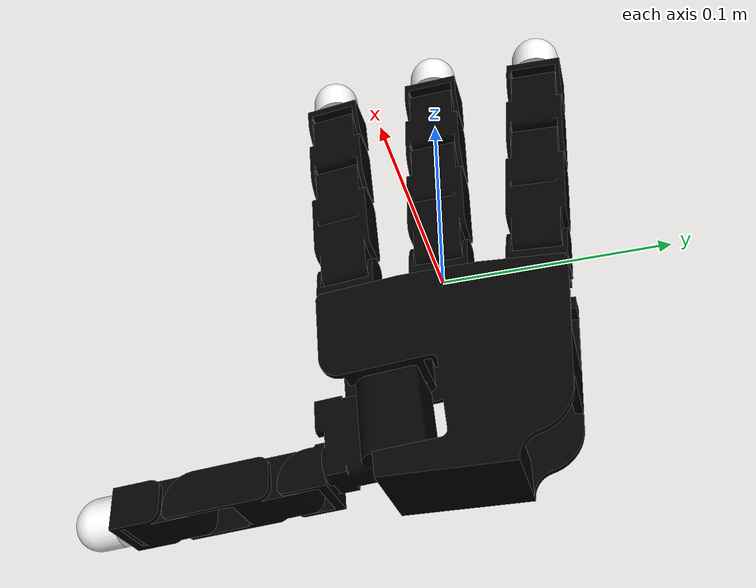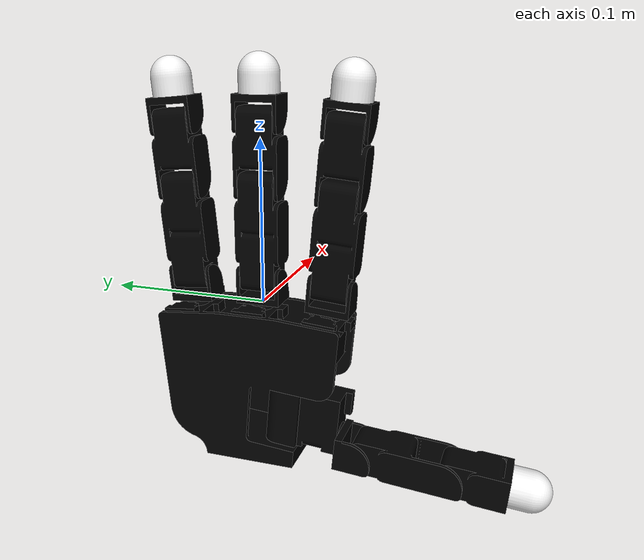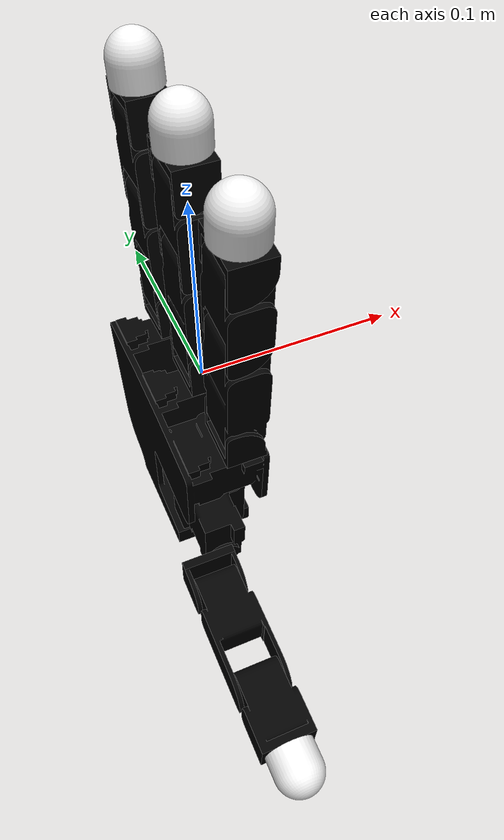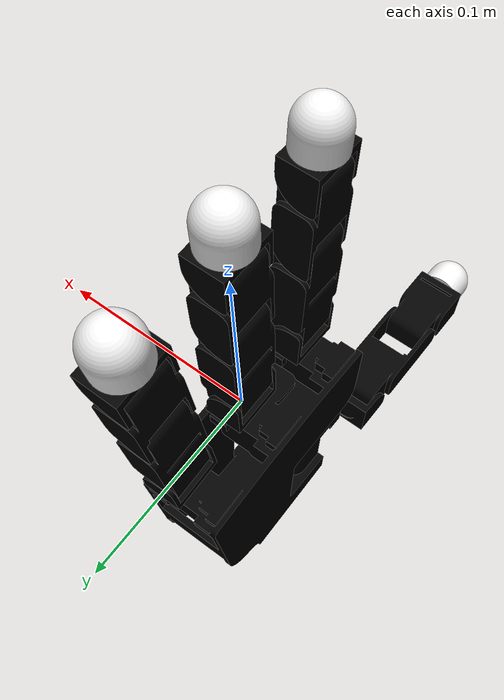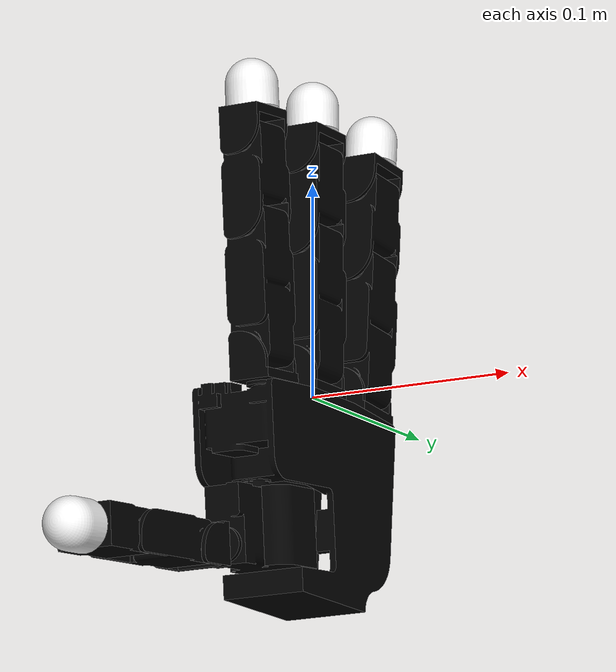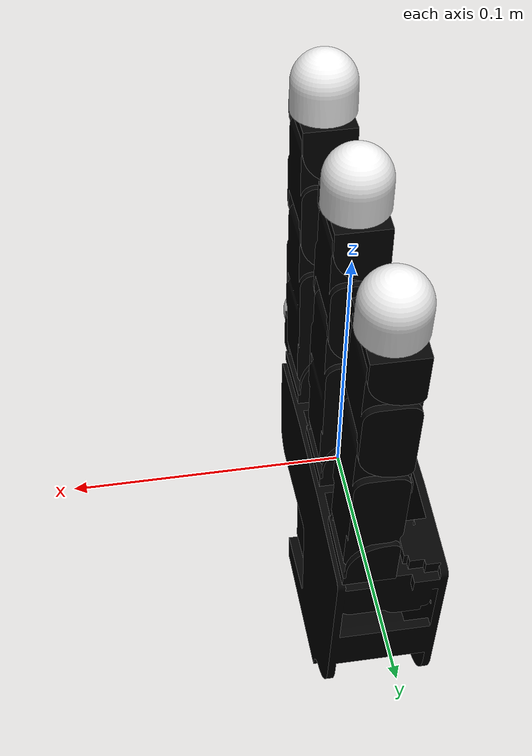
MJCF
<mujoco model="allegro_left">
  <compiler angle="radian" autolimits="true" />
  <option gravity="0 0 0" timestep="0.001" />
  <visual>
    <global offwidth="3840" offheight="2160" />
  </visual>
  <asset>
    <mesh name="base_link_left" content_type="model/obj" file="meshes/visual/base_link_left.obj" />
    <mesh name="link_0.0" content_type="model/obj" file="meshes/visual/link_0.0.obj" />
    <mesh name="link_1.0" content_type="model/obj" file="meshes/visual/link_1.0.obj" />
    <mesh name="link_2.0" content_type="model/obj" file="meshes/visual/link_2.0.obj" />
    <mesh name="link_3.0" content_type="model/obj" file="meshes/visual/link_3.0.obj" />
    <mesh name="link_tip" content_type="model/obj" file="meshes/visual/link_tip.obj" />
    <mesh name="link_tip_collision000" content_type="model/obj" file="meshes/collision/link_tip_collision000.obj" />
    <mesh name="link_12.0_left" content_type="model/obj" file="meshes/visual/link_12.0_left.obj" />
    <mesh name="link_13.0" content_type="model/obj" file="meshes/visual/link_13.0.obj" />
    <mesh name="link_14.0" content_type="model/obj" file="meshes/visual/link_14.0.obj" />
    <mesh name="link_15.0" content_type="model/obj" file="meshes/visual/link_15.0.obj" />
    <material name="base_link_left_material" rgba="0.00392157 0.00392157 0.00392157 1" />
    <material name="link_0.0_material" rgba="0.00392157 0.00392157 0.00392157 1" />
    <material name="link_1.0_material" rgba="0.00392157 0.00392157 0.00392157 1" />
    <material name="link_2.0_material" rgba="0.00392157 0.00392157 0.00392157 1" />
    <material name="link_3.0_material" rgba="0.00392157 0.00392157 0.00392157 1" />
    <material name="link_tip_material" rgba="0.94901961 0.94901961 0.94901961 1" />
    <material name="link_12.0_left_material" rgba="0.00392157 0.00392157 0.00392157 1" />
    <material name="link_13.0_material" rgba="0.00392157 0.00392157 0.00392157 1" />
    <material name="link_14.0_material" rgba="0.00392157 0.00392157 0.00392157 1" />
    <material name="link_15.0_material" rgba="0.00392157 0.00392157 0.00392157 1" />
    <texture type="skybox" builtin="gradient" rgb1="1 1 1" rgb2="1 1 1" width="32" height="512" />
  </asset>
  <worldbody>
    <light pos="0 0 5" dir="0 0 -1" directional="true" />
    <body name="hand_root">
      <body name="base_link">
        <inertial pos="0 0 0" mass="0.4154" diaginertia="0.0001 0.0001 0.0001" />
        <geom name="base_link_base_link_left_visual" quat="0.707107 -0.707106 0 0" type="mesh" contype="0" conaffinity="0" group="1" density="0" mesh="base_link_left" material="base_link_left_material" />
        <geom size="0.0207 0.056 0.0224" pos="-0.009 0 -0.023" type="box" group="3" />
        <geom size="0.0207 0.0269 0.0214" pos="-0.009 0.0253 -0.0667" type="box" group="3" />
        <geom size="0.0207 0.036 0.0065" pos="-0.0093 0.00557 -0.08874" type="box" group="3" />
        <body name="palm" pos="0 0 -0.065">
          <body name="wrist" pos="0 0 -0.03" />
        </body>
        <body name="link_0.0" pos="0 0.0435 -0.001542" quat="0.999048 -0.0436194 0 0">
          <inertial pos="0 0 0" quat="0.707107 0.707107 0 0" mass="0.0119" diaginertia="1.01667e-06 1.01667e-06 6.47677e-07" />
          <joint name="joint_0.0" pos="0 0 0" axis="0 0 1" range="-0.47 0.47" actuatorfrcrange="-10 10" damping="0.1" armature="0.0002" frictionloss="0.0" />
          <geom name="link_0.0_link_0.0_visual" type="mesh" contype="0" conaffinity="0" group="1" density="0" mesh="link_0.0" material="link_0.0_material" />
          <geom size="0.0098 0.01375 0.0082" pos="0 0 0.0082" type="box" group="3" />
          <body name="link_1.0" pos="0 0 0.0164">
            <inertial pos="0 0 0" quat="0.702596 0.559386 -0.178354 0.402039" mass="0.065" diaginertia="6.12799e-05 6.12799e-05 6.12799e-05" />
            <joint name="joint_1.0" pos="0 0 0" axis="0 1 0" range="-0.196 1.61" actuatorfrcrange="-10 10" damping="0.1" armature="0.0002" frictionloss="0.0" />
            <geom name="link_1.0_link_1.0_visual" type="mesh" contype="0" conaffinity="0" group="1" density="0" mesh="link_1.0" material="link_1.0_material" />
            <geom size="0.0098 0.01375 0.027" pos="0 0 0.027" type="box" group="3" />
            <body name="link_2.0" pos="0 0 0.054">
              <inertial pos="0 0 0" quat="0.719796 0.528175 -0.157463 0.422055" mass="0.0355" diaginertia="2.20969e-05 2.20969e-05 2.20969e-05" />
              <joint name="joint_2.0" pos="0 0 0" axis="0 1 0" range="-0.174 1.709" actuatorfrcrange="-10 10" damping="0.1" armature="0.0002" frictionloss="0.0" />
              <geom name="link_2.0_link_2.0_visual" type="mesh" contype="0" conaffinity="0" group="1" density="0" mesh="link_2.0" material="link_2.0_material" />
              <geom size="0.0098 0.01375 0.0192" pos="0 0 0.0192" type="box" group="3" />
              <body name="link_3.0" pos="0 0 0.0384">
                <inertial pos="0 0 0.01335" quat="0.5 0.5 0.5 0.5" mass="0.02" diaginertia="2e-05 2e-05 1e-05" />
                <joint name="joint_3.0" pos="0 0 0" axis="0 1 0" range="-0.227 1.618" actuatorfrcrange="-10 10" damping="0.1" armature="0.0002" frictionloss="0.0" />
                <geom name="link_3.0_link_3.0_visual" type="mesh" contype="0" conaffinity="0" group="1" density="0" mesh="link_3.0" material="link_3.0_material" />
                <geom size="0.0098 0.01345 0.011" pos="0 0 0.0047" type="box" group="3" />
                <body name="link_3.0_tip" pos="0 0 0.0387">
                  <inertial pos="0 0 0" mass="0.0168" diaginertia="9.68e-07 9.68e-07 9.68e-07" />
                  <geom name="link_3.0_tip_link_tip_visual" pos="0 0 -0.012" type="mesh" contype="0" conaffinity="0" group="1" density="0" mesh="link_tip" material="link_tip_material" />
                  <geom pos="0 0 -0.012" type="mesh" mesh="link_tip_collision000" group="3" />
                </body>
              </body>
            </body>
          </body>
        </body>
        <body name="link_4.0" pos="0 0 0.0007">
          <inertial pos="0 0 0" quat="0.5 0.5 -0.5 0.5" mass="0.005" diaginertia="6.125e-05 5.1458e-05 5.1458e-05" />
          <joint name="joint_4.0" pos="0 0 0" axis="0 0 1" range="-0.47 0.47" actuatorfrcrange="-10 10" damping="0.1" armature="0.0002" frictionloss="0.0" />
          <geom name="link_4.0_link_0.0_visual" type="mesh" contype="0" conaffinity="0" group="1" density="0" mesh="link_0.0" material="link_0.0_material" />
          <geom size="0.0098 0.01375 0.0082" pos="0 0 0.0082" type="box" group="3" />
          <body name="link_5.0" pos="0 0 0.0164">
            <inertial pos="0 0 0" quat="0.702596 0.559386 -0.178354 0.402039" mass="0.065" diaginertia="6.12799e-05 6.12799e-05 6.12799e-05" />
            <joint name="joint_5.0" pos="0 0 0" axis="0 1 0" range="-0.196 1.61" actuatorfrcrange="-10 10" damping="0.1" armature="0.0002" frictionloss="0.0" />
            <geom name="link_5.0_link_1.0_visual" type="mesh" contype="0" conaffinity="0" group="1" density="0" mesh="link_1.0" material="link_1.0_material" />
            <geom size="0.0098 0.01375 0.027" pos="0 0 0.027" type="box" group="3" />
            <body name="link_6.0" pos="0 0 0.054">
              <inertial pos="0 0 0" quat="0.719796 0.528175 -0.157463 0.422055" mass="0.0355" diaginertia="2.20969e-05 2.20969e-05 2.20969e-05" />
              <joint name="joint_6.0" pos="0 0 0" axis="0 1 0" range="-0.174 1.709" actuatorfrcrange="-10 10" damping="0.1" armature="0.0002" frictionloss="0.0" />
              <geom name="link_6.0_link_2.0_visual" type="mesh" contype="0" conaffinity="0" group="1" density="0" mesh="link_2.0" material="link_2.0_material" />
              <geom size="0.0098 0.01375 0.0192" pos="0 0 0.0192" type="box" group="3" />
              <body name="link_7.0" pos="0 0 0.0384">
                <inertial pos="0 0 0" quat="0.714142 0.538398 -0.162448 0.416821" mass="0.0388" diaginertia="2.68646e-05 2.68646e-05 2.68646e-05" />
                <joint name="joint_7.0" pos="0 0 0" axis="0 1 0" range="-0.227 1.618" actuatorfrcrange="-10 10" damping="0.1" armature="0.0002" frictionloss="0.0" />
                <geom name="link_7.0_link_3.0_visual" type="mesh" contype="0" conaffinity="0" group="1" density="0" mesh="link_3.0" material="link_3.0_material" />
                <geom size="0.0098 0.01345 0.011" pos="0 0 0.0047" type="box" group="3" />
                <body name="link_7.0_tip" pos="0 0 0.0387">
                  <inertial pos="0 0 0" quat="0.760448 0.456478 -0.161222 0.432844" mass="0.0096" diaginertia="4.3506e-06 4.3506e-06 4.3506e-06" />
                  <geom name="link_7.0_tip_link_tip_visual" pos="0 0 -0.012" type="mesh" contype="0" conaffinity="0" group="1" density="0" mesh="link_tip" material="link_tip_material" />
                  <geom pos="0 0 -0.012" type="mesh" mesh="link_tip_collision000" group="3" />
                </body>
              </body>
            </body>
          </body>
        </body>
        <body name="link_8.0" pos="0 -0.0435 -0.001542" quat="0.999048 0.0436194 0 0">
          <inertial pos="0 0 0" quat="0.5 0.5 -0.5 0.5" mass="0.005" diaginertia="6.125e-05 5.1458e-05 5.1458e-05" />
          <joint name="joint_8.0" pos="0 0 0" axis="0 0 1" range="-0.47 0.47" actuatorfrcrange="-10 10" damping="0.1" armature="0.0002" frictionloss="0.0" />
          <geom name="link_8.0_link_0.0_visual" type="mesh" contype="0" conaffinity="0" group="1" density="0" mesh="link_0.0" material="link_0.0_material" />
          <geom size="0.0098 0.01375 0.0082" pos="0 0 0.0082" type="box" group="3" />
          <body name="link_9.0" pos="0 0 0.0164">
            <inertial pos="0 0 0" quat="0.702596 0.559386 -0.178354 0.402039" mass="0.065" diaginertia="6.12799e-05 6.12799e-05 6.12799e-05" />
            <joint name="joint_9.0" pos="0 0 0" axis="0 1 0" range="-0.196 1.61" actuatorfrcrange="-10 10" damping="0.1" armature="0.0002" frictionloss="0.0" />
            <geom name="link_9.0_link_1.0_visual" type="mesh" contype="0" conaffinity="0" group="1" density="0" mesh="link_1.0" material="link_1.0_material" />
            <geom size="0.0098 0.01375 0.027" pos="0 0 0.027" type="box" group="3" />
            <body name="link_10.0" pos="0 0 0.054">
              <inertial pos="0 0 0" quat="0.719796 0.528175 -0.157463 0.422055" mass="0.0355" diaginertia="2.20969e-05 2.20969e-05 2.20969e-05" />
              <joint name="joint_10.0" pos="0 0 0" axis="0 1 0" range="-0.174 1.709" actuatorfrcrange="-10 10" damping="0.1" armature="0.0002" frictionloss="0.0" />
              <geom name="link_10.0_link_2.0_visual" type="mesh" contype="0" conaffinity="0" group="1" density="0" mesh="link_2.0" material="link_2.0_material" />
              <geom size="0.0098 0.01375 0.0192" pos="0 0 0.0192" type="box" group="3" />
              <body name="link_11.0" pos="0 0 0.0384">
                <inertial pos="0 0 0" quat="0.760448 0.456478 -0.161222 0.432844" mass="0.0096" diaginertia="4.3506e-06 4.3506e-06 4.3506e-06" />
                <joint name="joint_11.0" pos="0 0 0" axis="0 1 0" range="-0.227 1.618" actuatorfrcrange="-10 10" damping="0.1" armature="0.0002" frictionloss="0.0" />
                <geom name="link_11.0_link_3.0_visual" type="mesh" contype="0" conaffinity="0" group="1" density="0" mesh="link_3.0" material="link_3.0_material" />
                <geom size="0.0098 0.01345 0.011" pos="0 0 0.0047" type="box" group="3" />
                <body name="link_11.0_tip" pos="0 0 0.0387">
                  <inertial pos="0 0 0" mass="0.0168" diaginertia="9.68e-07 9.68e-07 9.68e-07" />
                  <geom name="link_11.0_tip_link_tip_visual" pos="0 0 -0.012" type="mesh" contype="0" conaffinity="0" group="1" density="0" mesh="link_tip" material="link_tip_material" />
                  <geom pos="0 0 -0.012" type="mesh" mesh="link_tip_collision000" group="3" />
                </body>
              </body>
            </body>
          </body>
        </body>
        <body name="link_12.0" pos="-0.0182 -0.019333 -0.045987" quat="0.477714 0.521334 -0.521334 0.477714">
          <inertial pos="0 0 0" quat="0.692635 0.569362 -0.07143 0.437013" mass="0.0176" diaginertia="1.73852e-05 1.73852e-05 1.73852e-05" />
          <joint name="joint_12.0" pos="0 0 0" axis="1 0 0" range="0.263 1.396" actuatorfrcrange="-10 10" damping="0.1" armature="0.0002" frictionloss="0.0" />
          <geom name="link_12.0_link_12.0_left_visual" quat="1.32679e-06 1 0 0" type="mesh" contype="0" conaffinity="0" group="1" density="0" mesh="link_12.0_left" material="link_12.0_left_material" />
          <geom size="0.0179 0.017 0.02275" pos="-0.0179 0.009 0.0145" type="box" group="3" />
          <body name="link_13.0" pos="-0.027 0.005 0.0399">
            <inertial pos="0 0 0" quat="-0.0269589 0.880876 0.334036 0.334292" mass="0.0119" diaginertia="4.33621e-06 4.33621e-06 4.33621e-06" />
            <joint name="joint_13.0" pos="0 0 0" axis="0 0 -1" range="-0.105 1.163" actuatorfrcrange="-10 10" damping="0.1" armature="0.0002" frictionloss="0.0" />
            <geom name="link_13.0_link_13.0_visual" type="mesh" contype="0" conaffinity="0" group="1" density="0" mesh="link_13.0" material="link_13.0_material" />
            <geom size="0.0098 0.01375 0.00885" pos="0 0 0.00885" type="box" group="3" />
            <body name="link_14.0" pos="0 0 0.0177">
              <inertial pos="0 0 0" quat="0.70472 0.55555 -0.174905 0.405146" mass="0.038" diaginertia="3.35111e-05 3.35111e-05 3.35111e-05" />
              <joint name="joint_14.0" pos="0 0 0" axis="0 1 0" range="-0.189 1.644" actuatorfrcrange="-10 10" damping="0.1" armature="0.0002" frictionloss="0.0" />
              <geom name="link_14.0_link_14.0_visual" type="mesh" contype="0" conaffinity="0" group="1" density="0" mesh="link_14.0" material="link_14.0_material" />
              <geom size="0.0098 0.01375 0.0257" pos="0 0 0.0257" type="box" group="3" />
              <body name="link_15.0" pos="0 0 0.0514">
                <inertial pos="0 0 0" quat="0.714142 0.538398 -0.162448 0.416821" mass="0.0388" diaginertia="2.68646e-05 2.68646e-05 2.68646e-05" />
                <joint name="joint_15.0" pos="0 0 0" axis="0 1 0" range="-0.162 1.719" actuatorfrcrange="-10 10" damping="0.1" armature="0.0002" frictionloss="0.0" />
                <geom name="link_15.0_link_15.0_visual" type="mesh" contype="0" conaffinity="0" group="1" density="0" mesh="link_15.0" material="link_15.0_material" />
                <geom size="0.0098 0.01345 0.02" pos="0 0 0.01125" type="box" group="3" />
                <body name="link_15.0_tip" pos="0 0 0.0543">
                  <inertial pos="0 0 0" mass="0.0168" diaginertia="9.68e-07 9.68e-07 9.68e-07" />
                  <geom name="link_15.0_tip_link_tip_visual" pos="0 0 -0.012" type="mesh" contype="0" conaffinity="0" group="1" density="0" mesh="link_tip" material="link_tip_material" />
                  <geom pos="0 0 -0.012" type="mesh" mesh="link_tip_collision000" group="3" />
                </body>
              </body>
            </body>
          </body>
        </body>
      </body>
    </body>
  </worldbody>
  <contact>
    <exclude name="ex_base_link_palm" body1="base_link" body2="palm" />
    <exclude name="ex_palm_wrist" body1="palm" body2="wrist" />
    <exclude name="ex_base_link_link_0.0" body1="base_link" body2="link_0.0" />
    <exclude name="ex_link_0.0_link_1.0" body1="link_0.0" body2="link_1.0" />
    <exclude name="ex_link_1.0_link_2.0" body1="link_1.0" body2="link_2.0" />
    <exclude name="ex_link_2.0_link_3.0" body1="link_2.0" body2="link_3.0" />
    <exclude name="ex_link_3.0_link_3.0_tip" body1="link_3.0" body2="link_3.0_tip" />
    <exclude name="ex_base_link_link_4.0" body1="base_link" body2="link_4.0" />
    <exclude name="ex_link_4.0_link_5.0" body1="link_4.0" body2="link_5.0" />
    <exclude name="ex_link_5.0_link_6.0" body1="link_5.0" body2="link_6.0" />
    <exclude name="ex_link_6.0_link_7.0" body1="link_6.0" body2="link_7.0" />
    <exclude name="ex_link_7.0_link_7.0_tip" body1="link_7.0" body2="link_7.0_tip" />
    <exclude name="ex_base_link_link_8.0" body1="base_link" body2="link_8.0" />
    <exclude name="ex_link_8.0_link_9.0" body1="link_8.0" body2="link_9.0" />
    <exclude name="ex_link_9.0_link_10.0" body1="link_9.0" body2="link_10.0" />
    <exclude name="ex_link_10.0_link_11.0" body1="link_10.0" body2="link_11.0" />
    <exclude name="ex_link_11.0_link_11.0_tip" body1="link_11.0" body2="link_11.0_tip" />
    <exclude name="ex_base_link_link_12.0" body1="base_link" body2="link_12.0" />
    <exclude name="ex_link_12.0_link_13.0" body1="link_12.0" body2="link_13.0" />
    <exclude name="ex_link_13.0_link_14.0" body1="link_13.0" body2="link_14.0" />
    <exclude name="ex_link_14.0_link_15.0" body1="link_14.0" body2="link_15.0" />
    <exclude name="ex_link_15.0_link_15.0_tip" body1="link_15.0" body2="link_15.0_tip" />
  </contact>
  <equality />
  <actuator>
    <position name="joint_0.0_actuator" joint="joint_0.0" kp="1" forcerange="-1 1" ctrlrange="-0.47 0.47" />
    <position name="joint_1.0_actuator" joint="joint_1.0" kp="1" forcerange="-1 1" ctrlrange="-0.196 1.61" />
    <position name="joint_2.0_actuator" joint="joint_2.0" kp="1" forcerange="-1 1" ctrlrange="-0.174 1.709" />
    <position name="joint_3.0_actuator" joint="joint_3.0" kp="1" forcerange="-1 1" ctrlrange="-0.227 1.618" />
    <position name="joint_4.0_actuator" joint="joint_4.0" kp="1" forcerange="-1 1" ctrlrange="-0.47 0.47" />
    <position name="joint_5.0_actuator" joint="joint_5.0" kp="1" forcerange="-1 1" ctrlrange="-0.196 1.61" />
    <position name="joint_6.0_actuator" joint="joint_6.0" kp="1" forcerange="-1 1" ctrlrange="-0.174 1.709" />
    <position name="joint_7.0_actuator" joint="joint_7.0" kp="1" forcerange="-1 1" ctrlrange="-0.227 1.618" />
    <position name="joint_8.0_actuator" joint="joint_8.0" kp="1" forcerange="-1 1" ctrlrange="-0.47 0.47" />
    <position name="joint_9.0_actuator" joint="joint_9.0" kp="1" forcerange="-1 1" ctrlrange="-0.196 1.61" />
    <position name="joint_10.0_actuator" joint="joint_10.0" kp="1" forcerange="-1 1" ctrlrange="-0.174 1.709" />
    <position name="joint_11.0_actuator" joint="joint_11.0" kp="1" forcerange="-1 1" ctrlrange="-0.227 1.618" />
    <position name="joint_12.0_actuator" joint="joint_12.0" kp="1" forcerange="-1 1" ctrlrange="0.263 1.396" />
    <position name="joint_13.0_actuator" joint="joint_13.0" kp="1" forcerange="-1 1" ctrlrange="-0.105 1.163" />
    <position name="joint_14.0_actuator" joint="joint_14.0" kp="1" forcerange="-1 1" ctrlrange="-0.189 1.644" />
    <position name="joint_15.0_actuator" joint="joint_15.0" kp="1" forcerange="-1 1" ctrlrange="-0.162 1.719" />
  </actuator>
</mujoco>
